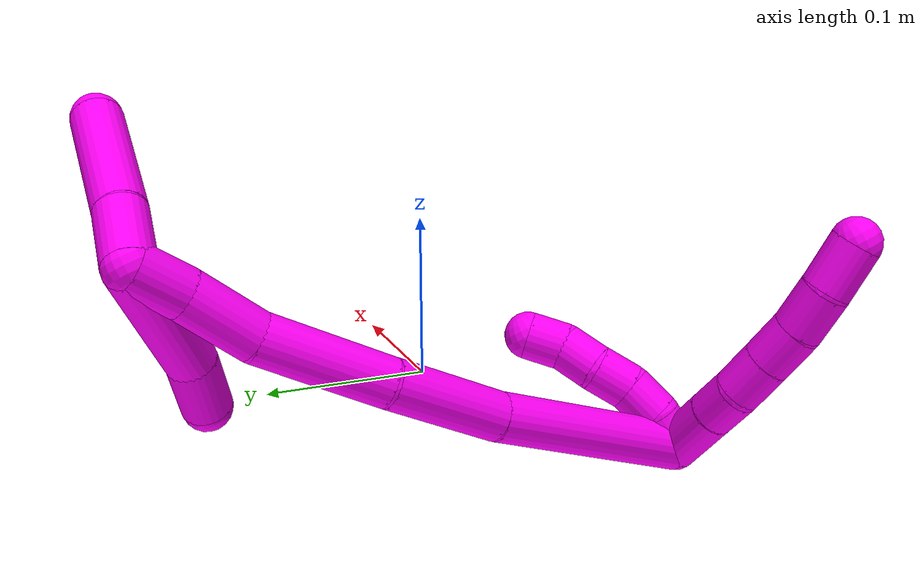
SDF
<sdf version="1.7">
 <world name="default">
  <model name="10">
   <static>0</static>
   <link name="10">
    <collision name="collision-cylinder-e_1_2_8">
     <pose>-0.009221 -0.013656 0.005264 1.2029 -0.562213 -0.391254</pose>
     <geometry><cylinder><radius>0.0125</radius><length>0.034595</length></cylinder></geometry>
     <surface>
      <friction><ode><mu>1.16</mu><mu2>1.16</mu2><slip1>0</slip1><slip2>0</slip2></ode></friction>
      <contact><ode><kp>1e+06</kp><kd>1</kd><max_vel>0</max_vel><min_depth>0.001</min_depth></ode></contact>
     </surface>
    </collision>
    <visual name="visual-cylinder-e_1_2_8">
     <pose>-0.009221 -0.013656 0.005264 1.2029 -0.562213 -0.391254</pose>
     <geometry><cylinder><radius>0.0125</radius><length>0.034595</length></cylinder></geometry>
     <material><ambient>1 0 0.964706 1</ambient></material>
    </visual>
    <collision name="collision-cylinder-e_2_8_9">
     <pose>-0.02358 -0.035853 0.013687 1.21648 -0.513709 -0.361779</pose>
     <geometry><cylinder><radius>0.0125</radius><length>0.020914</length></cylinder></geometry>
     <surface>
      <friction><ode><mu>1.16</mu><mu2>1.16</mu2><slip1>0</slip1><slip2>0</slip2></ode></friction>
      <contact><ode><kp>1e+06</kp><kd>1</kd><max_vel>0</max_vel><min_depth>0.001</min_depth></ode></contact>
     </surface>
    </collision>
    <visual name="visual-cylinder-e_2_8_9">
     <pose>-0.02358 -0.035853 0.013687 1.21648 -0.513709 -0.361779</pose>
     <geometry><cylinder><radius>0.0125</radius><length>0.020914</length></cylinder></geometry>
     <material><ambient>1 0 0.964706 1</ambient></material>
    </visual>
    <collision name="collision-cylinder-e_3_9_10">
     <pose>-0.031867 -0.054258 0.020873 1.18321 -0.287398 -0.193828</pose>
     <geometry><cylinder><radius>0.0125</radius><length>0.022218</length></cylinder></geometry>
     <surface>
      <friction><ode><mu>1.16</mu><mu2>1.16</mu2><slip1>0</slip1><slip2>0</slip2></ode></friction>
      <contact><ode><kp>1e+06</kp><kd>1</kd><max_vel>0</max_vel><min_depth>0.001</min_depth></ode></contact>
     </surface>
    </collision>
    <visual name="visual-cylinder-e_3_9_10">
     <pose>-0.031867 -0.054258 0.020873 1.18321 -0.287398 -0.193828</pose>
     <geometry><cylinder><radius>0.0125</radius><length>0.022218</length></cylinder></geometry>
     <material><ambient>1 0 0.964706 1</ambient></material>
    </visual>
    <collision name="collision-cylinder-e_4_10_11">
     <pose>-0.038029 -0.073958 0.029013 1.17478 -0.275367 -0.18398</pose>
     <geometry><cylinder><radius>0.0125</radius><length>0.02216</length></cylinder></geometry>
     <surface>
      <friction><ode><mu>1.16</mu><mu2>1.16</mu2><slip1>0</slip1><slip2>0</slip2></ode></friction>
      <contact><ode><kp>1e+06</kp><kd>1</kd><max_vel>0</max_vel><min_depth>0.001</min_depth></ode></contact>
     </surface>
    </collision>
    <visual name="visual-cylinder-e_4_10_11">
     <pose>-0.038029 -0.073958 0.029013 1.17478 -0.275367 -0.18398</pose>
     <geometry><cylinder><radius>0.0125</radius><length>0.02216</length></cylinder></geometry>
     <material><ambient>1 0 0.964706 1</ambient></material>
    </visual>
    <collision name="collision-cylinder-e_5_11_12">
     <pose>-0.044024 -0.093839 0.039099 1.03422 -0.24986 -0.142604</pose>
     <geometry><cylinder><radius>0.0125</radius><length>0.024119</length></cylinder></geometry>
     <surface>
      <friction><ode><mu>1.16</mu><mu2>1.16</mu2><slip1>0</slip1><slip2>0</slip2></ode></friction>
      <contact><ode><kp>1e+06</kp><kd>1</kd><max_vel>0</max_vel><min_depth>0.001</min_depth></ode></contact>
     </surface>
    </collision>
    <visual name="visual-cylinder-e_5_11_12">
     <pose>-0.044024 -0.093839 0.039099 1.03422 -0.24986 -0.142604</pose>
     <geometry><cylinder><radius>0.0125</radius><length>0.024119</length></cylinder></geometry>
     <material><ambient>1 0 0.964706 1</ambient></material>
    </visual>
    <collision name="collision-cylinder-e_6_12_6">
     <pose>-0.048086 -0.114824 0.052002 1.00626 -0.083212 -0.045816</pose>
     <geometry><cylinder><radius>0.0125</radius><length>0.025993</length></cylinder></geometry>
     <surface>
      <friction><ode><mu>1.16</mu><mu2>1.16</mu2><slip1>0</slip1><slip2>0</slip2></ode></friction>
      <contact><ode><kp>1e+06</kp><kd>1</kd><max_vel>0</max_vel><min_depth>0.001</min_depth></ode></contact>
     </surface>
    </collision>
    <visual name="visual-cylinder-e_6_12_6">
     <pose>-0.048086 -0.114824 0.052002 1.00626 -0.083212 -0.045816</pose>
     <geometry><cylinder><radius>0.0125</radius><length>0.025993</length></cylinder></geometry>
     <material><ambient>1 0 0.964706 1</ambient></material>
    </visual>
    <collision name="collision-cylinder-e_1_2_13">
     <pose>-0.001636 0.000293 0.009861 -0.029754 -0.164382 0.002451</pose>
     <geometry><cylinder><radius>0.0125</radius><length>0.02</length></cylinder></geometry>
     <surface>
      <friction><ode><mu>1.16</mu><mu2>1.16</mu2><slip1>0</slip1><slip2>0</slip2></ode></friction>
      <contact><ode><kp>1e+06</kp><kd>1</kd><max_vel>0</max_vel><min_depth>0.001</min_depth></ode></contact>
     </surface>
    </collision>
    <visual name="visual-cylinder-e_1_2_13">
     <pose>-0.001636 0.000293 0.009861 -0.029754 -0.164382 0.002451</pose>
     <geometry><cylinder><radius>0.0125</radius><length>0.02</length></cylinder></geometry>
     <material><ambient>1 0 0.964706 1</ambient></material>
    </visual>
    <collision name="collision-cylinder-e_2_13_14">
     <pose>-0.003459 0.003759 0.029203 -0.322878 -0.018602 0.00303</pose>
     <geometry><cylinder><radius>0.0125</radius><length>0.02</length></cylinder></geometry>
     <surface>
      <friction><ode><mu>1.16</mu><mu2>1.16</mu2><slip1>0</slip1><slip2>0</slip2></ode></friction>
      <contact><ode><kp>1e+06</kp><kd>1</kd><max_vel>0</max_vel><min_depth>0.001</min_depth></ode></contact>
     </surface>
    </collision>
    <visual name="visual-cylinder-e_2_13_14">
     <pose>-0.003459 0.003759 0.029203 -0.322878 -0.018602 0.00303</pose>
     <geometry><cylinder><radius>0.0125</radius><length>0.02</length></cylinder></geometry>
     <material><ambient>1 0 0.964706 1</ambient></material>
    </visual>
    <collision name="collision-cylinder-e_3_14_15">
     <pose>-0.004838 0.012192 0.047105 -0.558427 -0.119631 0.034336</pose>
     <geometry><cylinder><radius>0.0125</radius><length>0.02</length></cylinder></geometry>
     <surface>
      <friction><ode><mu>1.16</mu><mu2>1.16</mu2><slip1>0</slip1><slip2>0</slip2></ode></friction>
      <contact><ode><kp>1e+06</kp><kd>1</kd><max_vel>0</max_vel><min_depth>0.001</min_depth></ode></contact>
     </surface>
    </collision>
    <visual name="visual-cylinder-e_3_14_15">
     <pose>-0.004838 0.012192 0.047105 -0.558427 -0.119631 0.034336</pose>
     <geometry><cylinder><radius>0.0125</radius><length>0.02</length></cylinder></geometry>
     <material><ambient>1 0 0.964706 1</ambient></material>
    </visual>
    <collision name="collision-cylinder-e_4_15_16">
     <pose>-0.004666 0.022562 0.064013 -0.541819 0.137008 -0.038107</pose>
     <geometry><cylinder><radius>0.0125</radius><length>0.02</length></cylinder></geometry>
     <surface>
      <friction><ode><mu>1.16</mu><mu2>1.16</mu2><slip1>0</slip1><slip2>0</slip2></ode></friction>
      <contact><ode><kp>1e+06</kp><kd>1</kd><max_vel>0</max_vel><min_depth>0.001</min_depth></ode></contact>
     </surface>
    </collision>
    <visual name="visual-cylinder-e_4_15_16">
     <pose>-0.004666 0.022562 0.064013 -0.541819 0.137008 -0.038107</pose>
     <geometry><cylinder><radius>0.0125</radius><length>0.02</length></cylinder></geometry>
     <material><ambient>1 0 0.964706 1</ambient></material>
    </visual>
    <collision name="collision-cylinder-e_5_16_5">
     <pose>-0.004328 0.034706 0.079532 -0.78567 -0.102998 0.042711</pose>
     <geometry><cylinder><radius>0.0125</radius><length>0.02</length></cylinder></geometry>
     <surface>
      <friction><ode><mu>1.16</mu><mu2>1.16</mu2><slip1>0</slip1><slip2>0</slip2></ode></friction>
      <contact><ode><kp>1e+06</kp><kd>1</kd><max_vel>0</max_vel><min_depth>0.001</min_depth></ode></contact>
     </surface>
    </collision>
    <visual name="visual-cylinder-e_5_16_5">
     <pose>-0.004328 0.034706 0.079532 -0.78567 -0.102998 0.042711</pose>
     <geometry><cylinder><radius>0.0125</radius><length>0.02</length></cylinder></geometry>
     <material><ambient>1 0 0.964706 1</ambient></material>
    </visual>
    <collision name="collision-cylinder-e_1_2_17">
     <pose>-0.034056 0.030271 0.030505 -0.781547 -0.670132 0.284941</pose>
     <geometry><cylinder><radius>0.0125</radius><length>0.109667</length></cylinder></geometry>
     <surface>
      <friction><ode><mu>1.16</mu><mu2>1.16</mu2><slip1>0</slip1><slip2>0</slip2></ode></friction>
      <contact><ode><kp>1e+06</kp><kd>1</kd><max_vel>0</max_vel><min_depth>0.001</min_depth></ode></contact>
     </surface>
    </collision>
    <visual name="visual-cylinder-e_1_2_17">
     <pose>-0.034056 0.030271 0.030505 -0.781547 -0.670132 0.284941</pose>
     <geometry><cylinder><radius>0.0125</radius><length>0.109667</length></cylinder></geometry>
     <material><ambient>1 0 0.964706 1</ambient></material>
    </visual>
    <collision name="collision-cylinder-e_2_17_18">
     <pose>-0.086152 0.07495 0.080397 -0.639113 -0.64144 0.218962</pose>
     <geometry><cylinder><radius>0.0125</radius><length>0.060295</length></cylinder></geometry>
     <surface>
      <friction><ode><mu>1.16</mu><mu2>1.16</mu2><slip1>0</slip1><slip2>0</slip2></ode></friction>
      <contact><ode><kp>1e+06</kp><kd>1</kd><max_vel>0</max_vel><min_depth>0.001</min_depth></ode></contact>
     </surface>
    </collision>
    <visual name="visual-cylinder-e_2_17_18">
     <pose>-0.086152 0.07495 0.080397 -0.639113 -0.64144 0.218962</pose>
     <geometry><cylinder><radius>0.0125</radius><length>0.060295</length></cylinder></geometry>
     <material><ambient>1 0 0.964706 1</ambient></material>
    </visual>
    <collision name="collision-cylinder-e_3_18_19">
     <pose>-0.119784 0.106996 0.122664 -0.656737 -0.494963 0.171741</pose>
     <geometry><cylinder><radius>0.0125</radius><length>0.065658</length></cylinder></geometry>
     <surface>
      <friction><ode><mu>1.16</mu><mu2>1.16</mu2><slip1>0</slip1><slip2>0</slip2></ode></friction>
      <contact><ode><kp>1e+06</kp><kd>1</kd><max_vel>0</max_vel><min_depth>0.001</min_depth></ode></contact>
     </surface>
    </collision>
    <visual name="visual-cylinder-e_3_18_19">
     <pose>-0.119784 0.106996 0.122664 -0.656737 -0.494963 0.171741</pose>
     <geometry><cylinder><radius>0.0125</radius><length>0.065658</length></cylinder></geometry>
     <material><ambient>1 0 0.964706 1</ambient></material>
    </visual>
    <collision name="collision-cylinder-e_4_19_20">
     <pose>-0.144452 0.131134 0.160594 -0.407704 -0.505523 0.106686</pose>
     <geometry><cylinder><radius>0.0125</radius><length>0.037475</length></cylinder></geometry>
     <surface>
      <friction><ode><mu>1.16</mu><mu2>1.16</mu2><slip1>0</slip1><slip2>0</slip2></ode></friction>
      <contact><ode><kp>1e+06</kp><kd>1</kd><max_vel>0</max_vel><min_depth>0.001</min_depth></ode></contact>
     </surface>
    </collision>
    <visual name="visual-cylinder-e_4_19_20">
     <pose>-0.144452 0.131134 0.160594 -0.407704 -0.505523 0.106686</pose>
     <geometry><cylinder><radius>0.0125</radius><length>0.037475</length></cylinder></geometry>
     <material><ambient>1 0 0.964706 1</ambient></material>
    </visual>
    <collision name="collision-cylinder-e_5_20_1">
     <pose>-0.161789 0.142207 0.185225 -0.44536 -0.661444 0.155172</pose>
     <geometry><cylinder><radius>0.0125</radius><length>0.026905</length></cylinder></geometry>
     <surface>
      <friction><ode><mu>1.16</mu><mu2>1.16</mu2><slip1>0</slip1><slip2>0</slip2></ode></friction>
      <contact><ode><kp>1e+06</kp><kd>1</kd><max_vel>0</max_vel><min_depth>0.001</min_depth></ode></contact>
     </surface>
    </collision>
    <visual name="visual-cylinder-e_5_20_1">
     <pose>-0.161789 0.142207 0.185225 -0.44536 -0.661444 0.155172</pose>
     <geometry><cylinder><radius>0.0125</radius><length>0.026905</length></cylinder></geometry>
     <material><ambient>1 0 0.964706 1</ambient></material>
    </visual>
    <collision name="collision-cylinder-e_1_1_21">
     <pose>-0.144867 0.156003 0.172842 -2.74403 0.813234 -2.26648</pose>
     <geometry><cylinder><radius>0.0125</radius><length>0.069332</length></cylinder></geometry>
     <surface>
      <friction><ode><mu>1.16</mu><mu2>1.16</mu2><slip1>0</slip1><slip2>0</slip2></ode></friction>
      <contact><ode><kp>1e+06</kp><kd>1</kd><max_vel>0</max_vel><min_depth>0.001</min_depth></ode></contact>
     </surface>
    </collision>
    <visual name="visual-cylinder-e_1_1_21">
     <pose>-0.144867 0.156003 0.172842 -2.74403 0.813234 -2.26648</pose>
     <geometry><cylinder><radius>0.0125</radius><length>0.069332</length></cylinder></geometry>
     <material><ambient>1 0 0.964706 1</ambient></material>
    </visual>
    <collision name="collision-cylinder-e_2_21_4">
     <pose>-0.110506 0.171213 0.140151 -2.63251 0.641554 -1.8129</pose>
     <geometry><cylinder><radius>0.0125</radius><length>0.030668</length></cylinder></geometry>
     <surface>
      <friction><ode><mu>1.16</mu><mu2>1.16</mu2><slip1>0</slip1><slip2>0</slip2></ode></friction>
      <contact><ode><kp>1e+06</kp><kd>1</kd><max_vel>0</max_vel><min_depth>0.001</min_depth></ode></contact>
     </surface>
    </collision>
    <visual name="visual-cylinder-e_2_21_4">
     <pose>-0.110506 0.171213 0.140151 -2.63251 0.641554 -1.8129</pose>
     <geometry><cylinder><radius>0.0125</radius><length>0.030668</length></cylinder></geometry>
     <material><ambient>1 0 0.964706 1</ambient></material>
    </visual>
    <collision name="collision-cylinder-e_1_1_22">
     <pose>-0.160388 0.147401 0.207702 -0.048125 0.642506 -0.016018</pose>
     <geometry><cylinder><radius>0.0125</radius><length>0.032256</length></cylinder></geometry>
     <surface>
      <friction><ode><mu>1.16</mu><mu2>1.16</mu2><slip1>0</slip1><slip2>0</slip2></ode></friction>
      <contact><ode><kp>1e+06</kp><kd>1</kd><max_vel>0</max_vel><min_depth>0.001</min_depth></ode></contact>
     </surface>
    </collision>
    <visual name="visual-cylinder-e_1_1_22">
     <pose>-0.160388 0.147401 0.207702 -0.048125 0.642506 -0.016018</pose>
     <geometry><cylinder><radius>0.0125</radius><length>0.032256</length></cylinder></geometry>
     <material><ambient>1 0 0.964706 1</ambient></material>
    </visual>
    <collision name="collision-cylinder-e_2_22_3">
     <pose>-0.129348 0.15263 0.246467 -0.176293 0.682957 -0.062797</pose>
     <geometry><cylinder><radius>0.0125</radius><length>0.067744</length></cylinder></geometry>
     <surface>
      <friction><ode><mu>1.16</mu><mu2>1.16</mu2><slip1>0</slip1><slip2>0</slip2></ode></friction>
      <contact><ode><kp>1e+06</kp><kd>1</kd><max_vel>0</max_vel><min_depth>0.001</min_depth></ode></contact>
     </surface>
    </collision>
    <visual name="visual-cylinder-e_2_22_3">
     <pose>-0.129348 0.15263 0.246467 -0.176293 0.682957 -0.062797</pose>
     <geometry><cylinder><radius>0.0125</radius><length>0.067744</length></cylinder></geometry>
     <material><ambient>1 0 0.964706 1</ambient></material>
    </visual>
    <collision name="collision-sphere-3">
     <pose>-0.107972 0.157238 0.272334 0 -0 0</pose>
     <geometry><sphere><radius>0.0125</radius></sphere></geometry>
     <surface>
      <friction><ode><mu>1.16</mu><mu2>1.16</mu2><slip1>0</slip1><slip2>0</slip2></ode></friction>
      <contact><ode><kp>1e+06</kp><kd>1</kd><max_vel>0</max_vel><min_depth>0.001</min_depth></ode></contact>
     </surface>
    </collision>
    <visual name="visual-sphere-3">
     <pose>-0.107972 0.157238 0.272334 0 -0 0</pose>
     <geometry><sphere><radius>0.0125</radius></sphere></geometry>
     <material><ambient>1 0 0.964706 1</ambient></material>
    </visual>
    <collision name="collision-sphere-22">
     <pose>-0.150724 0.148022 0.220599 0 -0 0</pose>
     <geometry><sphere><radius>0.0125</radius></sphere></geometry>
     <surface>
      <friction><ode><mu>1.16</mu><mu2>1.16</mu2><slip1>0</slip1><slip2>0</slip2></ode></friction>
      <contact><ode><kp>1e+06</kp><kd>1</kd><max_vel>0</max_vel><min_depth>0.001</min_depth></ode></contact>
     </surface>
    </collision>
    <visual name="visual-sphere-22">
     <pose>-0.150724 0.148022 0.220599 0 -0 0</pose>
     <geometry><sphere><radius>0.0125</radius></sphere></geometry>
     <material><ambient>1 0 0.964706 1</ambient></material>
    </visual>
    <collision name="collision-sphere-4">
     <pose>-0.101329 0.1772 0.129424 0 -0 0</pose>
     <geometry><sphere><radius>0.0125</radius></sphere></geometry>
     <surface>
      <friction><ode><mu>1.16</mu><mu2>1.16</mu2><slip1>0</slip1><slip2>0</slip2></ode></friction>
      <contact><ode><kp>1e+06</kp><kd>1</kd><max_vel>0</max_vel><min_depth>0.001</min_depth></ode></contact>
     </surface>
    </collision>
    <visual name="visual-sphere-4">
     <pose>-0.101329 0.1772 0.129424 0 -0 0</pose>
     <geometry><sphere><radius>0.0125</radius></sphere></geometry>
     <material><ambient>1 0 0.964706 1</ambient></material>
    </visual>
    <collision name="collision-sphere-21">
     <pose>-0.119682 0.165225 0.150879 0 -0 0</pose>
     <geometry><sphere><radius>0.0125</radius></sphere></geometry>
     <surface>
      <friction><ode><mu>1.16</mu><mu2>1.16</mu2><slip1>0</slip1><slip2>0</slip2></ode></friction>
      <contact><ode><kp>1e+06</kp><kd>1</kd><max_vel>0</max_vel><min_depth>0.001</min_depth></ode></contact>
     </surface>
    </collision>
    <visual name="visual-sphere-21">
     <pose>-0.119682 0.165225 0.150879 0 -0 0</pose>
     <geometry><sphere><radius>0.0125</radius></sphere></geometry>
     <material><ambient>1 0 0.964706 1</ambient></material>
    </visual>
    <collision name="collision-sphere-1">
     <pose>-0.170052 0.14678 0.194805 0 -0 0</pose>
     <geometry><sphere><radius>0.0125</radius></sphere></geometry>
     <surface>
      <friction><ode><mu>1.16</mu><mu2>1.16</mu2><slip1>0</slip1><slip2>0</slip2></ode></friction>
      <contact><ode><kp>1e+06</kp><kd>1</kd><max_vel>0</max_vel><min_depth>0.001</min_depth></ode></contact>
     </surface>
    </collision>
    <visual name="visual-sphere-1">
     <pose>-0.170052 0.14678 0.194805 0 -0 0</pose>
     <geometry><sphere><radius>0.0125</radius></sphere></geometry>
     <material><ambient>1 0 0.964706 1</ambient></material>
    </visual>
    <collision name="collision-sphere-12">
     <pose>-0.047006 -0.103882 0.045073 0 -0 0</pose>
     <geometry><sphere><radius>0.0125</radius></sphere></geometry>
     <surface>
      <friction><ode><mu>1.16</mu><mu2>1.16</mu2><slip1>0</slip1><slip2>0</slip2></ode></friction>
      <contact><ode><kp>1e+06</kp><kd>1</kd><max_vel>0</max_vel><min_depth>0.001</min_depth></ode></contact>
     </surface>
    </collision>
    <visual name="visual-sphere-12">
     <pose>-0.047006 -0.103882 0.045073 0 -0 0</pose>
     <geometry><sphere><radius>0.0125</radius></sphere></geometry>
     <material><ambient>1 0 0.964706 1</ambient></material>
    </visual>
    <collision name="collision-sphere-11">
     <pose>-0.041042 -0.083796 0.033126 0 -0 0</pose>
     <geometry><sphere><radius>0.0125</radius></sphere></geometry>
     <surface>
      <friction><ode><mu>1.16</mu><mu2>1.16</mu2><slip1>0</slip1><slip2>0</slip2></ode></friction>
      <contact><ode><kp>1e+06</kp><kd>1</kd><max_vel>0</max_vel><min_depth>0.001</min_depth></ode></contact>
     </surface>
    </collision>
    <visual name="visual-sphere-11">
     <pose>-0.041042 -0.083796 0.033126 0 -0 0</pose>
     <geometry><sphere><radius>0.0125</radius></sphere></geometry>
     <material><ambient>1 0 0.964706 1</ambient></material>
    </visual>
    <collision name="collision-sphere-10">
     <pose>-0.035016 -0.064121 0.0249 0 -0 0</pose>
     <geometry><sphere><radius>0.0125</radius></sphere></geometry>
     <surface>
      <friction><ode><mu>1.16</mu><mu2>1.16</mu2><slip1>0</slip1><slip2>0</slip2></ode></friction>
      <contact><ode><kp>1e+06</kp><kd>1</kd><max_vel>0</max_vel><min_depth>0.001</min_depth></ode></contact>
     </surface>
    </collision>
    <visual name="visual-sphere-10">
     <pose>-0.035016 -0.064121 0.0249 0 -0 0</pose>
     <geometry><sphere><radius>0.0125</radius></sphere></geometry>
     <material><ambient>1 0 0.964706 1</ambient></material>
    </visual>
    <collision name="collision-sphere-9">
     <pose>-0.028719 -0.044395 0.016847 0 -0 0</pose>
     <geometry><sphere><radius>0.0125</radius></sphere></geometry>
     <surface>
      <friction><ode><mu>1.16</mu><mu2>1.16</mu2><slip1>0</slip1><slip2>0</slip2></ode></friction>
      <contact><ode><kp>1e+06</kp><kd>1</kd><max_vel>0</max_vel><min_depth>0.001</min_depth></ode></contact>
     </surface>
    </collision>
    <visual name="visual-sphere-9">
     <pose>-0.028719 -0.044395 0.016847 0 -0 0</pose>
     <geometry><sphere><radius>0.0125</radius></sphere></geometry>
     <material><ambient>1 0 0.964706 1</ambient></material>
    </visual>
    <collision name="collision-sphere-2">
     <geometry><sphere><radius>0.0125</radius></sphere></geometry>
     <surface>
      <friction><ode><mu>1.16</mu><mu2>1.16</mu2><slip1>0</slip1><slip2>0</slip2></ode></friction>
      <contact><ode><kp>1e+06</kp><kd>1</kd><max_vel>0</max_vel><min_depth>0.001</min_depth></ode></contact>
     </surface>
    </collision>
    <visual name="visual-sphere-2">
     <geometry><sphere><radius>0.0125</radius></sphere></geometry>
     <material><ambient>1 0 0.964706 1</ambient></material>
    </visual>
    <collision name="collision-sphere-19">
     <pose>-0.135378 0.124634 0.145544 0 -0 0</pose>
     <geometry><sphere><radius>0.0125</radius></sphere></geometry>
     <surface>
      <friction><ode><mu>1.16</mu><mu2>1.16</mu2><slip1>0</slip1><slip2>0</slip2></ode></friction>
      <contact><ode><kp>1e+06</kp><kd>1</kd><max_vel>0</max_vel><min_depth>0.001</min_depth></ode></contact>
     </surface>
    </collision>
    <visual name="visual-sphere-19">
     <pose>-0.135378 0.124634 0.145544 0 -0 0</pose>
     <geometry><sphere><radius>0.0125</radius></sphere></geometry>
     <material><ambient>1 0 0.964706 1</ambient></material>
    </visual>
    <collision name="collision-sphere-8">
     <pose>-0.018441 -0.027312 0.010527 0 -0 0</pose>
     <geometry><sphere><radius>0.0125</radius></sphere></geometry>
     <surface>
      <friction><ode><mu>1.16</mu><mu2>1.16</mu2><slip1>0</slip1><slip2>0</slip2></ode></friction>
      <contact><ode><kp>1e+06</kp><kd>1</kd><max_vel>0</max_vel><min_depth>0.001</min_depth></ode></contact>
     </surface>
    </collision>
    <visual name="visual-sphere-8">
     <pose>-0.018441 -0.027312 0.010527 0 -0 0</pose>
     <geometry><sphere><radius>0.0125</radius></sphere></geometry>
     <material><ambient>1 0 0.964706 1</ambient></material>
    </visual>
    <collision name="collision-sphere-6">
     <pose>-0.049166 -0.125766 0.058932 0 -0 0</pose>
     <geometry><sphere><radius>0.0125</radius></sphere></geometry>
     <surface>
      <friction><ode><mu>1.16</mu><mu2>1.16</mu2><slip1>0</slip1><slip2>0</slip2></ode></friction>
      <contact><ode><kp>1e+06</kp><kd>1</kd><max_vel>0</max_vel><min_depth>0.001</min_depth></ode></contact>
     </surface>
    </collision>
    <visual name="visual-sphere-6">
     <pose>-0.049166 -0.125766 0.058932 0 -0 0</pose>
     <geometry><sphere><radius>0.0125</radius></sphere></geometry>
     <material><ambient>1 0 0.964706 1</ambient></material>
    </visual>
    <collision name="collision-sphere-13">
     <pose>-0.003273 0.000587 0.019722 0 -0 0</pose>
     <geometry><sphere><radius>0.0125</radius></sphere></geometry>
     <surface>
      <friction><ode><mu>1.16</mu><mu2>1.16</mu2><slip1>0</slip1><slip2>0</slip2></ode></friction>
      <contact><ode><kp>1e+06</kp><kd>1</kd><max_vel>0</max_vel><min_depth>0.001</min_depth></ode></contact>
     </surface>
    </collision>
    <visual name="visual-sphere-13">
     <pose>-0.003273 0.000587 0.019722 0 -0 0</pose>
     <geometry><sphere><radius>0.0125</radius></sphere></geometry>
     <material><ambient>1 0 0.964706 1</ambient></material>
    </visual>
    <collision name="collision-sphere-14">
     <pose>-0.003645 0.006932 0.038685 0 -0 0</pose>
     <geometry><sphere><radius>0.0125</radius></sphere></geometry>
     <surface>
      <friction><ode><mu>1.16</mu><mu2>1.16</mu2><slip1>0</slip1><slip2>0</slip2></ode></friction>
      <contact><ode><kp>1e+06</kp><kd>1</kd><max_vel>0</max_vel><min_depth>0.001</min_depth></ode></contact>
     </surface>
    </collision>
    <visual name="visual-sphere-14">
     <pose>-0.003645 0.006932 0.038685 0 -0 0</pose>
     <geometry><sphere><radius>0.0125</radius></sphere></geometry>
     <material><ambient>1 0 0.964706 1</ambient></material>
    </visual>
    <collision name="collision-sphere-15">
     <pose>-0.006032 0.017453 0.055525 0 -0 0</pose>
     <geometry><sphere><radius>0.0125</radius></sphere></geometry>
     <surface>
      <friction><ode><mu>1.16</mu><mu2>1.16</mu2><slip1>0</slip1><slip2>0</slip2></ode></friction>
      <contact><ode><kp>1e+06</kp><kd>1</kd><max_vel>0</max_vel><min_depth>0.001</min_depth></ode></contact>
     </surface>
    </collision>
    <visual name="visual-sphere-15">
     <pose>-0.006032 0.017453 0.055525 0 -0 0</pose>
     <geometry><sphere><radius>0.0125</radius></sphere></geometry>
     <material><ambient>1 0 0.964706 1</ambient></material>
    </visual>
    <collision name="collision-sphere-16">
     <pose>-0.0033 0.02767 0.0725 0 -0 0</pose>
     <geometry><sphere><radius>0.0125</radius></sphere></geometry>
     <surface>
      <friction><ode><mu>1.16</mu><mu2>1.16</mu2><slip1>0</slip1><slip2>0</slip2></ode></friction>
      <contact><ode><kp>1e+06</kp><kd>1</kd><max_vel>0</max_vel><min_depth>0.001</min_depth></ode></contact>
     </surface>
    </collision>
    <visual name="visual-sphere-16">
     <pose>-0.0033 0.02767 0.0725 0 -0 0</pose>
     <geometry><sphere><radius>0.0125</radius></sphere></geometry>
     <material><ambient>1 0 0.964706 1</ambient></material>
    </visual>
    <collision name="collision-sphere-5">
     <pose>-0.005357 0.041741 0.086564 0 -0 0</pose>
     <geometry><sphere><radius>0.0125</radius></sphere></geometry>
     <surface>
      <friction><ode><mu>1.16</mu><mu2>1.16</mu2><slip1>0</slip1><slip2>0</slip2></ode></friction>
      <contact><ode><kp>1e+06</kp><kd>1</kd><max_vel>0</max_vel><min_depth>0.001</min_depth></ode></contact>
     </surface>
    </collision>
    <visual name="visual-sphere-5">
     <pose>-0.005357 0.041741 0.086564 0 -0 0</pose>
     <geometry><sphere><radius>0.0125</radius></sphere></geometry>
     <material><ambient>1 0 0.964706 1</ambient></material>
    </visual>
    <collision name="collision-sphere-17">
     <pose>-0.068113 0.060542 0.06101 0 -0 0</pose>
     <geometry><sphere><radius>0.0125</radius></sphere></geometry>
     <surface>
      <friction><ode><mu>1.16</mu><mu2>1.16</mu2><slip1>0</slip1><slip2>0</slip2></ode></friction>
      <contact><ode><kp>1e+06</kp><kd>1</kd><max_vel>0</max_vel><min_depth>0.001</min_depth></ode></contact>
     </surface>
    </collision>
    <visual name="visual-sphere-17">
     <pose>-0.068113 0.060542 0.06101 0 -0 0</pose>
     <geometry><sphere><radius>0.0125</radius></sphere></geometry>
     <material><ambient>1 0 0.964706 1</ambient></material>
    </visual>
    <collision name="collision-sphere-18">
     <pose>-0.10419 0.089358 0.099785 0 -0 0</pose>
     <geometry><sphere><radius>0.0125</radius></sphere></geometry>
     <surface>
      <friction><ode><mu>1.16</mu><mu2>1.16</mu2><slip1>0</slip1><slip2>0</slip2></ode></friction>
      <contact><ode><kp>1e+06</kp><kd>1</kd><max_vel>0</max_vel><min_depth>0.001</min_depth></ode></contact>
     </surface>
    </collision>
    <visual name="visual-sphere-18">
     <pose>-0.10419 0.089358 0.099785 0 -0 0</pose>
     <geometry><sphere><radius>0.0125</radius></sphere></geometry>
     <material><ambient>1 0 0.964706 1</ambient></material>
    </visual>
    <collision name="collision-sphere-20">
     <pose>-0.153526 0.137634 0.175644 0 -0 0</pose>
     <geometry><sphere><radius>0.0125</radius></sphere></geometry>
     <surface>
      <friction><ode><mu>1.16</mu><mu2>1.16</mu2><slip1>0</slip1><slip2>0</slip2></ode></friction>
      <contact><ode><kp>1e+06</kp><kd>1</kd><max_vel>0</max_vel><min_depth>0.001</min_depth></ode></contact>
     </surface>
    </collision>
    <visual name="visual-sphere-20">
     <pose>-0.153526 0.137634 0.175644 0 -0 0</pose>
     <geometry><sphere><radius>0.0125</radius></sphere></geometry>
     <material><ambient>1 0 0.964706 1</ambient></material>
    </visual>
    <inertial>
     <pose>-0.078644 0.062561 0.100521 0 -0 0</pose>
     <mass>0.75</mass>
     <inertia><ixx>0.000166</ixx><ixy>0</ixy><ixz>0</ixz><iyy>0.00023</iyy><iyz>0</iyz><izz>-6e-06</izz></inertia>
    </inertial>
   </link>
   <pose>-0.183529 -0.073281 0.012568 -0.524923 0.196624 -0.599114</pose>
  </model>
 </world>
</sdf>
